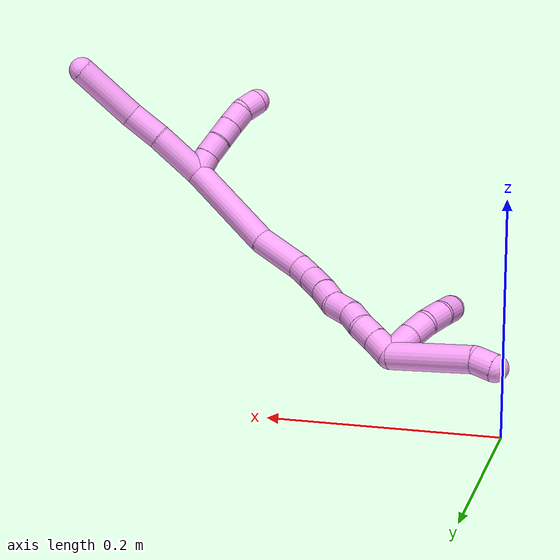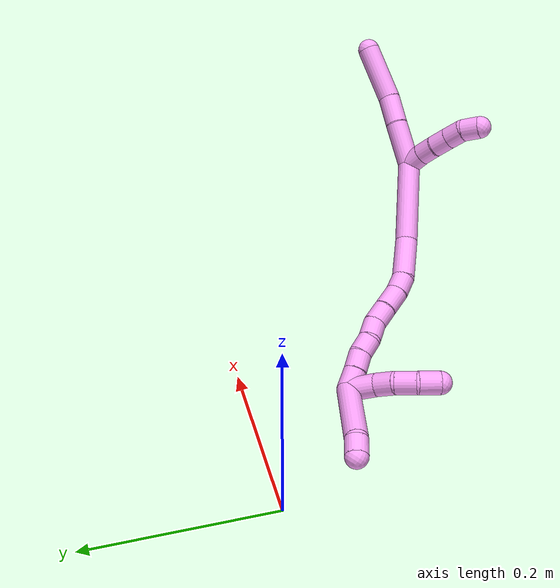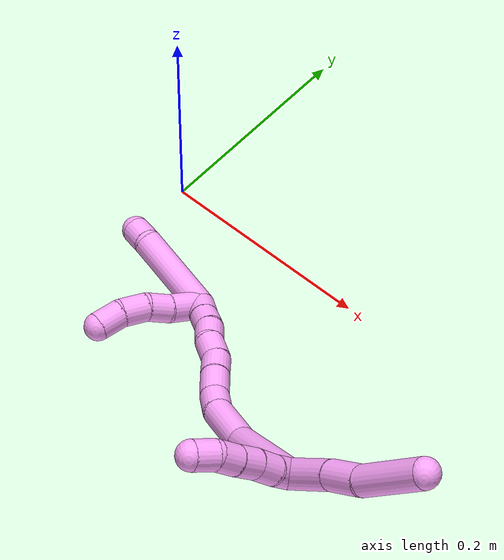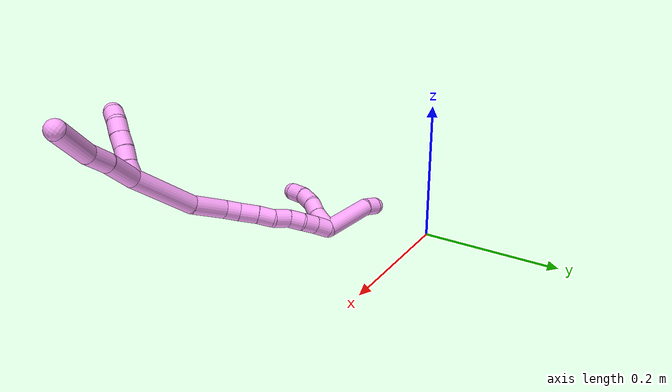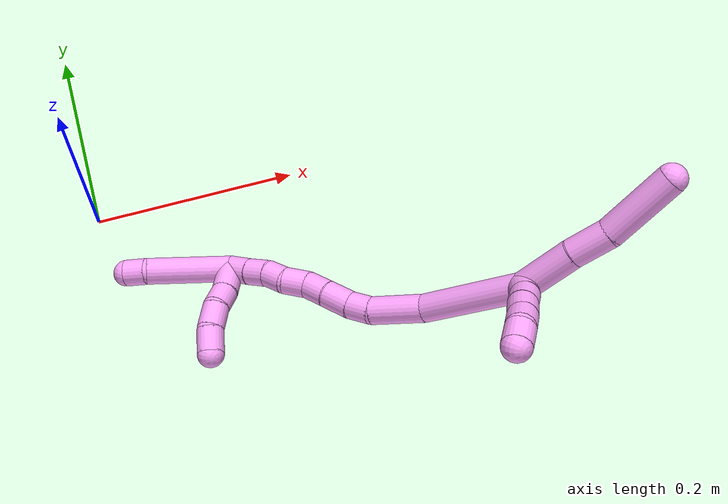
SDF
<sdf version="1.7">
 <world name="default">
  <model name="4">
   <static>0</static>
   <link name="4">
    <collision name="collision-cylinder-e_1_2_8">
     <pose>0.015173 0.011364 0.017309 -0.580959 0.63237 -0.194979</pose>
     <geometry><cylinder><radius>0.0125</radius><length>0.05134</length></cylinder></geometry>
     <surface>
      <friction><ode><mu>1.16</mu><mu2>1.16</mu2><slip1>0</slip1><slip2>0</slip2></ode></friction>
      <contact><ode><kp>1e+06</kp><kd>1</kd><max_vel>0</max_vel><min_depth>0.001</min_depth></ode></contact>
     </surface>
    </collision>
    <visual name="visual-cylinder-e_1_2_8">
     <pose>0.015173 0.011364 0.017309 -0.580959 0.63237 -0.194979</pose>
     <geometry><cylinder><radius>0.0125</radius><length>0.05134</length></cylinder></geometry>
     <material><ambient>1 0.65098 0.996078 1</ambient></material>
    </visual>
    <collision name="collision-cylinder-e_2_8_9">
     <pose>0.04113 0.028746 0.046496 -0.468918 0.680815 -0.168799</pose>
     <geometry><cylinder><radius>0.0125</radius><length>0.03427</length></cylinder></geometry>
     <surface>
      <friction><ode><mu>1.16</mu><mu2>1.16</mu2><slip1>0</slip1><slip2>0</slip2></ode></friction>
      <contact><ode><kp>1e+06</kp><kd>1</kd><max_vel>0</max_vel><min_depth>0.001</min_depth></ode></contact>
     </surface>
    </collision>
    <visual name="visual-cylinder-e_2_8_9">
     <pose>0.04113 0.028746 0.046496 -0.468918 0.680815 -0.168799</pose>
     <geometry><cylinder><radius>0.0125</radius><length>0.03427</length></cylinder></geometry>
     <material><ambient>1 0.65098 0.996078 1</ambient></material>
    </visual>
    <collision name="collision-cylinder-e_3_9_6">
     <pose>0.0714 0.051984 0.077355 -0.736817 0.650037 -0.258709</pose>
     <geometry><cylinder><radius>0.0125</radius><length>0.06439</length></cylinder></geometry>
     <surface>
      <friction><ode><mu>1.16</mu><mu2>1.16</mu2><slip1>0</slip1><slip2>0</slip2></ode></friction>
      <contact><ode><kp>1e+06</kp><kd>1</kd><max_vel>0</max_vel><min_depth>0.001</min_depth></ode></contact>
     </surface>
    </collision>
    <visual name="visual-cylinder-e_3_9_6">
     <pose>0.0714 0.051984 0.077355 -0.736817 0.650037 -0.258709</pose>
     <geometry><cylinder><radius>0.0125</radius><length>0.06439</length></cylinder></geometry>
     <material><ambient>1 0.65098 0.996078 1</ambient></material>
    </visual>
    <collision name="collision-cylinder-e_1_2_10">
     <pose>-0.006227 0.002222 0.007503 -0.287878 -0.672167 0.10118</pose>
     <geometry><cylinder><radius>0.0125</radius><length>0.02</length></cylinder></geometry>
     <surface>
      <friction><ode><mu>1.16</mu><mu2>1.16</mu2><slip1>0</slip1><slip2>0</slip2></ode></friction>
      <contact><ode><kp>1e+06</kp><kd>1</kd><max_vel>0</max_vel><min_depth>0.001</min_depth></ode></contact>
     </surface>
    </collision>
    <visual name="visual-cylinder-e_1_2_10">
     <pose>-0.006227 0.002222 0.007503 -0.287878 -0.672167 0.10118</pose>
     <geometry><cylinder><radius>0.0125</radius><length>0.02</length></cylinder></geometry>
     <material><ambient>1 0.65098 0.996078 1</ambient></material>
    </visual>
    <collision name="collision-cylinder-e_2_10_11">
     <pose>-0.01987 0.006973 0.021218 -0.386703 -0.835514 0.173388</pose>
     <geometry><cylinder><radius>0.0125</radius><length>0.02</length></cylinder></geometry>
     <surface>
      <friction><ode><mu>1.16</mu><mu2>1.16</mu2><slip1>0</slip1><slip2>0</slip2></ode></friction>
      <contact><ode><kp>1e+06</kp><kd>1</kd><max_vel>0</max_vel><min_depth>0.001</min_depth></ode></contact>
     </surface>
    </collision>
    <visual name="visual-cylinder-e_2_10_11">
     <pose>-0.01987 0.006973 0.021218 -0.386703 -0.835514 0.173388</pose>
     <geometry><cylinder><radius>0.0125</radius><length>0.02</length></cylinder></geometry>
     <material><ambient>1 0.65098 0.996078 1</ambient></material>
    </visual>
    <collision name="collision-cylinder-e_3_11_12">
     <pose>-0.034501 0.011031 0.034184 -0.222538 -0.805966 0.095193</pose>
     <geometry><cylinder><radius>0.0125</radius><length>0.02</length></cylinder></geometry>
     <surface>
      <friction><ode><mu>1.16</mu><mu2>1.16</mu2><slip1>0</slip1><slip2>0</slip2></ode></friction>
      <contact><ode><kp>1e+06</kp><kd>1</kd><max_vel>0</max_vel><min_depth>0.001</min_depth></ode></contact>
     </surface>
    </collision>
    <visual name="visual-cylinder-e_3_11_12">
     <pose>-0.034501 0.011031 0.034184 -0.222538 -0.805966 0.095193</pose>
     <geometry><cylinder><radius>0.0125</radius><length>0.02</length></cylinder></geometry>
     <material><ambient>1 0.65098 0.996078 1</ambient></material>
    </visual>
    <collision name="collision-cylinder-e_4_12_13">
     <pose>-0.049287 0.014502 0.047175 -0.301989 -0.858837 0.139122</pose>
     <geometry><cylinder><radius>0.0125</radius><length>0.02</length></cylinder></geometry>
     <surface>
      <friction><ode><mu>1.16</mu><mu2>1.16</mu2><slip1>0</slip1><slip2>0</slip2></ode></friction>
      <contact><ode><kp>1e+06</kp><kd>1</kd><max_vel>0</max_vel><min_depth>0.001</min_depth></ode></contact>
     </surface>
    </collision>
    <visual name="visual-cylinder-e_4_12_13">
     <pose>-0.049287 0.014502 0.047175 -0.301989 -0.858837 0.139122</pose>
     <geometry><cylinder><radius>0.0125</radius><length>0.02</length></cylinder></geometry>
     <material><ambient>1 0.65098 0.996078 1</ambient></material>
    </visual>
    <collision name="collision-cylinder-e_5_13_5">
     <pose>-0.065359 0.015297 0.058553 0.219844 -1.01608 -0.122748</pose>
     <geometry><cylinder><radius>0.0125</radius><length>0.02</length></cylinder></geometry>
     <surface>
      <friction><ode><mu>1.16</mu><mu2>1.16</mu2><slip1>0</slip1><slip2>0</slip2></ode></friction>
      <contact><ode><kp>1e+06</kp><kd>1</kd><max_vel>0</max_vel><min_depth>0.001</min_depth></ode></contact>
     </surface>
    </collision>
    <visual name="visual-cylinder-e_5_13_5">
     <pose>-0.065359 0.015297 0.058553 0.219844 -1.01608 -0.122748</pose>
     <geometry><cylinder><radius>0.0125</radius><length>0.02</length></cylinder></geometry>
     <material><ambient>1 0.65098 0.996078 1</ambient></material>
    </visual>
    <collision name="collision-cylinder-e_1_2_14">
     <pose>-0.021594 -0.008968 -0.041291 2.92773 -0.472444 -2.30268</pose>
     <geometry><cylinder><radius>0.0125</radius><length>0.094904</length></cylinder></geometry>
     <surface>
      <friction><ode><mu>1.16</mu><mu2>1.16</mu2><slip1>0</slip1><slip2>0</slip2></ode></friction>
      <contact><ode><kp>1e+06</kp><kd>1</kd><max_vel>0</max_vel><min_depth>0.001</min_depth></ode></contact>
     </surface>
    </collision>
    <visual name="visual-cylinder-e_1_2_14">
     <pose>-0.021594 -0.008968 -0.041291 2.92773 -0.472444 -2.30268</pose>
     <geometry><cylinder><radius>0.0125</radius><length>0.094904</length></cylinder></geometry>
     <material><ambient>1 0.65098 0.996078 1</ambient></material>
    </visual>
    <collision name="collision-cylinder-e_2_14_15">
     <pose>-0.056496 -0.016662 -0.103358 -3.08037 -0.568881 2.93289</pose>
     <geometry><cylinder><radius>0.0125</radius><length>0.049412</length></cylinder></geometry>
     <surface>
      <friction><ode><mu>1.16</mu><mu2>1.16</mu2><slip1>0</slip1><slip2>0</slip2></ode></friction>
      <contact><ode><kp>1e+06</kp><kd>1</kd><max_vel>0</max_vel><min_depth>0.001</min_depth></ode></contact>
     </surface>
    </collision>
    <visual name="visual-cylinder-e_2_14_15">
     <pose>-0.056496 -0.016662 -0.103358 -3.08037 -0.568881 2.93289</pose>
     <geometry><cylinder><radius>0.0125</radius><length>0.049412</length></cylinder></geometry>
     <material><ambient>1 0.65098 0.996078 1</ambient></material>
    </visual>
    <collision name="collision-cylinder-e_3_15_16">
     <pose>-0.073211 -0.013036 -0.133829 -2.90349 -0.329025 1.89287</pose>
     <geometry><cylinder><radius>0.0125</radius><length>0.021083</length></cylinder></geometry>
     <surface>
      <friction><ode><mu>1.16</mu><mu2>1.16</mu2><slip1>0</slip1><slip2>0</slip2></ode></friction>
      <contact><ode><kp>1e+06</kp><kd>1</kd><max_vel>0</max_vel><min_depth>0.001</min_depth></ode></contact>
     </surface>
    </collision>
    <visual name="visual-cylinder-e_3_15_16">
     <pose>-0.073211 -0.013036 -0.133829 -2.90349 -0.329025 1.89287</pose>
     <geometry><cylinder><radius>0.0125</radius><length>0.021083</length></cylinder></geometry>
     <material><ambient>1 0.65098 0.996078 1</ambient></material>
    </visual>
    <collision name="collision-cylinder-e_4_16_17">
     <pose>-0.079416 -0.006025 -0.155272 -2.76412 -0.217923 1.04023</pose>
     <geometry><cylinder><radius>0.0125</radius><length>0.025889</length></cylinder></geometry>
     <surface>
      <friction><ode><mu>1.16</mu><mu2>1.16</mu2><slip1>0</slip1><slip2>0</slip2></ode></friction>
      <contact><ode><kp>1e+06</kp><kd>1</kd><max_vel>0</max_vel><min_depth>0.001</min_depth></ode></contact>
     </surface>
    </collision>
    <visual name="visual-cylinder-e_4_16_17">
     <pose>-0.079416 -0.006025 -0.155272 -2.76412 -0.217923 1.04023</pose>
     <geometry><cylinder><radius>0.0125</radius><length>0.025889</length></cylinder></geometry>
     <material><ambient>1 0.65098 0.996078 1</ambient></material>
    </visual>
    <collision name="collision-cylinder-e_5_17_18">
     <pose>-0.084069 0.001902 -0.177571 -2.84122 -0.166344 1.00706</pose>
     <geometry><cylinder><radius>0.0125</radius><length>0.0224</length></cylinder></geometry>
     <surface>
      <friction><ode><mu>1.16</mu><mu2>1.16</mu2><slip1>0</slip1><slip2>0</slip2></ode></friction>
      <contact><ode><kp>1e+06</kp><kd>1</kd><max_vel>0</max_vel><min_depth>0.001</min_depth></ode></contact>
     </surface>
    </collision>
    <visual name="visual-cylinder-e_5_17_18">
     <pose>-0.084069 0.001902 -0.177571 -2.84122 -0.166344 1.00706</pose>
     <geometry><cylinder><radius>0.0125</radius><length>0.0224</length></cylinder></geometry>
     <material><ambient>1 0.65098 0.996078 1</ambient></material>
    </visual>
    <collision name="collision-cylinder-e_6_18_19">
     <pose>-0.091362 0.008513 -0.197656 -2.80427 -0.493833 1.95334</pose>
     <geometry><cylinder><radius>0.0125</radius><length>0.022949</length></cylinder></geometry>
     <surface>
      <friction><ode><mu>1.16</mu><mu2>1.16</mu2><slip1>0</slip1><slip2>0</slip2></ode></friction>
      <contact><ode><kp>1e+06</kp><kd>1</kd><max_vel>0</max_vel><min_depth>0.001</min_depth></ode></contact>
     </surface>
    </collision>
    <visual name="visual-cylinder-e_6_18_19">
     <pose>-0.091362 0.008513 -0.197656 -2.80427 -0.493833 1.95334</pose>
     <geometry><cylinder><radius>0.0125</radius><length>0.022949</length></cylinder></geometry>
     <material><ambient>1 0.65098 0.996078 1</ambient></material>
    </visual>
    <collision name="collision-cylinder-e_7_19_20">
     <pose>-0.098807 0.014491 -0.216779 -2.87352 -0.199042 1.27478</pose>
     <geometry><cylinder><radius>0.0125</radius><length>0.020288</length></cylinder></geometry>
     <surface>
      <friction><ode><mu>1.16</mu><mu2>1.16</mu2><slip1>0</slip1><slip2>0</slip2></ode></friction>
      <contact><ode><kp>1e+06</kp><kd>1</kd><max_vel>0</max_vel><min_depth>0.001</min_depth></ode></contact>
     </surface>
    </collision>
    <visual name="visual-cylinder-e_7_19_20">
     <pose>-0.098807 0.014491 -0.216779 -2.87352 -0.199042 1.27478</pose>
     <geometry><cylinder><radius>0.0125</radius><length>0.020288</length></cylinder></geometry>
     <material><ambient>1 0.65098 0.996078 1</ambient></material>
    </visual>
    <collision name="collision-cylinder-e_8_20_21">
     <pose>-0.104815 0.018162 -0.235812 -3.03226 -0.398658 2.61253</pose>
     <geometry><cylinder><radius>0.0125</radius><length>0.020619</length></cylinder></geometry>
     <surface>
      <friction><ode><mu>1.16</mu><mu2>1.16</mu2><slip1>0</slip1><slip2>0</slip2></ode></friction>
      <contact><ode><kp>1e+06</kp><kd>1</kd><max_vel>0</max_vel><min_depth>0.001</min_depth></ode></contact>
     </surface>
    </collision>
    <visual name="visual-cylinder-e_8_20_21">
     <pose>-0.104815 0.018162 -0.235812 -3.03226 -0.398658 2.61253</pose>
     <geometry><cylinder><radius>0.0125</radius><length>0.020619</length></cylinder></geometry>
     <material><ambient>1 0.65098 0.996078 1</ambient></material>
    </visual>
    <collision name="collision-cylinder-e_9_21_1">
     <pose>-0.112464 0.020382 -0.255809 -3.02986 -0.33085 2.49514</pose>
     <geometry><cylinder><radius>0.0125</radius><length>0.022457</length></cylinder></geometry>
     <surface>
      <friction><ode><mu>1.16</mu><mu2>1.16</mu2><slip1>0</slip1><slip2>0</slip2></ode></friction>
      <contact><ode><kp>1e+06</kp><kd>1</kd><max_vel>0</max_vel><min_depth>0.001</min_depth></ode></contact>
     </surface>
    </collision>
    <visual name="visual-cylinder-e_9_21_1">
     <pose>-0.112464 0.020382 -0.255809 -3.02986 -0.33085 2.49514</pose>
     <geometry><cylinder><radius>0.0125</radius><length>0.022457</length></cylinder></geometry>
     <material><ambient>1 0.65098 0.996078 1</ambient></material>
    </visual>
    <collision name="collision-cylinder-e_1_1_22">
     <pose>-0.128156 0.018706 -0.256591 0.284761 -0.869011 -0.132858</pose>
     <geometry><cylinder><radius>0.0125</radius><length>0.031542</length></cylinder></geometry>
     <surface>
      <friction><ode><mu>1.16</mu><mu2>1.16</mu2><slip1>0</slip1><slip2>0</slip2></ode></friction>
      <contact><ode><kp>1e+06</kp><kd>1</kd><max_vel>0</max_vel><min_depth>0.001</min_depth></ode></contact>
     </surface>
    </collision>
    <visual name="visual-cylinder-e_1_1_22">
     <pose>-0.128156 0.018706 -0.256591 0.284761 -0.869011 -0.132858</pose>
     <geometry><cylinder><radius>0.0125</radius><length>0.031542</length></cylinder></geometry>
     <material><ambient>1 0.65098 0.996078 1</ambient></material>
    </visual>
    <collision name="collision-cylinder-e_2_22_23">
     <pose>-0.14935 0.015268 -0.241276 0.103805 -1.0237 -0.058352</pose>
     <geometry><cylinder><radius>0.0125</radius><length>0.021428</length></cylinder></geometry>
     <surface>
      <friction><ode><mu>1.16</mu><mu2>1.16</mu2><slip1>0</slip1><slip2>0</slip2></ode></friction>
      <contact><ode><kp>1e+06</kp><kd>1</kd><max_vel>0</max_vel><min_depth>0.001</min_depth></ode></contact>
     </surface>
    </collision>
    <visual name="visual-cylinder-e_2_22_23">
     <pose>-0.14935 0.015268 -0.241276 0.103805 -1.0237 -0.058352</pose>
     <geometry><cylinder><radius>0.0125</radius><length>0.021428</length></cylinder></geometry>
     <material><ambient>1 0.65098 0.996078 1</ambient></material>
    </visual>
    <collision name="collision-cylinder-e_3_23_24">
     <pose>-0.16779 0.010481 -0.229682 0.607921 -0.900014 -0.300768</pose>
     <geometry><cylinder><radius>0.0125</radius><length>0.023718</length></cylinder></geometry>
     <surface>
      <friction><ode><mu>1.16</mu><mu2>1.16</mu2><slip1>0</slip1><slip2>0</slip2></ode></friction>
      <contact><ode><kp>1e+06</kp><kd>1</kd><max_vel>0</max_vel><min_depth>0.001</min_depth></ode></contact>
     </surface>
    </collision>
    <visual name="visual-cylinder-e_3_23_24">
     <pose>-0.16779 0.010481 -0.229682 0.607921 -0.900014 -0.300768</pose>
     <geometry><cylinder><radius>0.0125</radius><length>0.023718</length></cylinder></geometry>
     <material><ambient>1 0.65098 0.996078 1</ambient></material>
    </visual>
    <collision name="collision-cylinder-e_4_24_4">
     <pose>-0.184208 -0.000455 -0.217321 0.817285 -0.658075 -0.293581</pose>
     <geometry><cylinder><radius>0.0125</radius><length>0.023312</length></cylinder></geometry>
     <surface>
      <friction><ode><mu>1.16</mu><mu2>1.16</mu2><slip1>0</slip1><slip2>0</slip2></ode></friction>
      <contact><ode><kp>1e+06</kp><kd>1</kd><max_vel>0</max_vel><min_depth>0.001</min_depth></ode></contact>
     </surface>
    </collision>
    <visual name="visual-cylinder-e_4_24_4">
     <pose>-0.184208 -0.000455 -0.217321 0.817285 -0.658075 -0.293581</pose>
     <geometry><cylinder><radius>0.0125</radius><length>0.023312</length></cylinder></geometry>
     <material><ambient>1 0.65098 0.996078 1</ambient></material>
    </visual>
    <collision name="collision-cylinder-e_1_1_25">
     <pose>-0.147687 0.035429 -0.286358 -2.5354 -0.914262 2.00895</pose>
     <geometry><cylinder><radius>0.0125</radius><length>0.079725</length></cylinder></geometry>
     <surface>
      <friction><ode><mu>1.16</mu><mu2>1.16</mu2><slip1>0</slip1><slip2>0</slip2></ode></friction>
      <contact><ode><kp>1e+06</kp><kd>1</kd><max_vel>0</max_vel><min_depth>0.001</min_depth></ode></contact>
     </surface>
    </collision>
    <visual name="visual-cylinder-e_1_1_25">
     <pose>-0.147687 0.035429 -0.286358 -2.5354 -0.914262 2.00895</pose>
     <geometry><cylinder><radius>0.0125</radius><length>0.079725</length></cylinder></geometry>
     <material><ambient>1 0.65098 0.996078 1</ambient></material>
    </visual>
    <collision name="collision-cylinder-e_2_25_3">
     <pose>-0.186105 0.050743 -0.313692 -2.94631 -0.740917 2.64748</pose>
     <geometry><cylinder><radius>0.0125</radius><length>0.020275</length></cylinder></geometry>
     <surface>
      <friction><ode><mu>1.16</mu><mu2>1.16</mu2><slip1>0</slip1><slip2>0</slip2></ode></friction>
      <contact><ode><kp>1e+06</kp><kd>1</kd><max_vel>0</max_vel><min_depth>0.001</min_depth></ode></contact>
     </surface>
    </collision>
    <visual name="visual-cylinder-e_2_25_3">
     <pose>-0.186105 0.050743 -0.313692 -2.94631 -0.740917 2.64748</pose>
     <geometry><cylinder><radius>0.0125</radius><length>0.020275</length></cylinder></geometry>
     <material><ambient>1 0.65098 0.996078 1</ambient></material>
    </visual>
    <collision name="collision-sphere-3">
     <pose>-0.192948 0.052194 -0.32103 0 -0 0</pose>
     <geometry><sphere><radius>0.0125</radius></sphere></geometry>
     <surface>
      <friction><ode><mu>1.16</mu><mu2>1.16</mu2><slip1>0</slip1><slip2>0</slip2></ode></friction>
      <contact><ode><kp>1e+06</kp><kd>1</kd><max_vel>0</max_vel><min_depth>0.001</min_depth></ode></contact>
     </surface>
    </collision>
    <visual name="visual-sphere-3">
     <pose>-0.192948 0.052194 -0.32103 0 -0 0</pose>
     <geometry><sphere><radius>0.0125</radius></sphere></geometry>
     <material><ambient>1 0.65098 0.996078 1</ambient></material>
    </visual>
    <collision name="collision-sphere-25">
     <pose>-0.179263 0.049291 -0.306354 0 -0 0</pose>
     <geometry><sphere><radius>0.0125</radius></sphere></geometry>
     <surface>
      <friction><ode><mu>1.16</mu><mu2>1.16</mu2><slip1>0</slip1><slip2>0</slip2></ode></friction>
      <contact><ode><kp>1e+06</kp><kd>1</kd><max_vel>0</max_vel><min_depth>0.001</min_depth></ode></contact>
     </surface>
    </collision>
    <visual name="visual-sphere-25">
     <pose>-0.179263 0.049291 -0.306354 0 -0 0</pose>
     <geometry><sphere><radius>0.0125</radius></sphere></geometry>
     <material><ambient>1 0.65098 0.996078 1</ambient></material>
    </visual>
    <collision name="collision-sphere-4">
     <pose>-0.191337 -0.007181 -0.211012 0 -0 0</pose>
     <geometry><sphere><radius>0.0125</radius></sphere></geometry>
     <surface>
      <friction><ode><mu>1.16</mu><mu2>1.16</mu2><slip1>0</slip1><slip2>0</slip2></ode></friction>
      <contact><ode><kp>1e+06</kp><kd>1</kd><max_vel>0</max_vel><min_depth>0.001</min_depth></ode></contact>
     </surface>
    </collision>
    <visual name="visual-sphere-4">
     <pose>-0.191337 -0.007181 -0.211012 0 -0 0</pose>
     <geometry><sphere><radius>0.0125</radius></sphere></geometry>
     <material><ambient>1 0.65098 0.996078 1</ambient></material>
    </visual>
    <collision name="collision-sphere-24">
     <pose>-0.177079 0.00627 -0.223631 0 -0 0</pose>
     <geometry><sphere><radius>0.0125</radius></sphere></geometry>
     <surface>
      <friction><ode><mu>1.16</mu><mu2>1.16</mu2><slip1>0</slip1><slip2>0</slip2></ode></friction>
      <contact><ode><kp>1e+06</kp><kd>1</kd><max_vel>0</max_vel><min_depth>0.001</min_depth></ode></contact>
     </surface>
    </collision>
    <visual name="visual-sphere-24">
     <pose>-0.177079 0.00627 -0.223631 0 -0 0</pose>
     <geometry><sphere><radius>0.0125</radius></sphere></geometry>
     <material><ambient>1 0.65098 0.996078 1</ambient></material>
    </visual>
    <collision name="collision-sphere-23">
     <pose>-0.1585 0.014691 -0.235733 0 -0 0</pose>
     <geometry><sphere><radius>0.0125</radius></sphere></geometry>
     <surface>
      <friction><ode><mu>1.16</mu><mu2>1.16</mu2><slip1>0</slip1><slip2>0</slip2></ode></friction>
      <contact><ode><kp>1e+06</kp><kd>1</kd><max_vel>0</max_vel><min_depth>0.001</min_depth></ode></contact>
     </surface>
    </collision>
    <visual name="visual-sphere-23">
     <pose>-0.1585 0.014691 -0.235733 0 -0 0</pose>
     <geometry><sphere><radius>0.0125</radius></sphere></geometry>
     <material><ambient>1 0.65098 0.996078 1</ambient></material>
    </visual>
    <collision name="collision-sphere-22">
     <pose>-0.1402 0.015846 -0.24682 0 -0 0</pose>
     <geometry><sphere><radius>0.0125</radius></sphere></geometry>
     <surface>
      <friction><ode><mu>1.16</mu><mu2>1.16</mu2><slip1>0</slip1><slip2>0</slip2></ode></friction>
      <contact><ode><kp>1e+06</kp><kd>1</kd><max_vel>0</max_vel><min_depth>0.001</min_depth></ode></contact>
     </surface>
    </collision>
    <visual name="visual-sphere-22">
     <pose>-0.1402 0.015846 -0.24682 0 -0 0</pose>
     <geometry><sphere><radius>0.0125</radius></sphere></geometry>
     <material><ambient>1 0.65098 0.996078 1</ambient></material>
    </visual>
    <collision name="collision-sphere-1">
     <pose>-0.116112 0.021567 -0.266363 0 -0 0</pose>
     <geometry><sphere><radius>0.0125</radius></sphere></geometry>
     <surface>
      <friction><ode><mu>1.16</mu><mu2>1.16</mu2><slip1>0</slip1><slip2>0</slip2></ode></friction>
      <contact><ode><kp>1e+06</kp><kd>1</kd><max_vel>0</max_vel><min_depth>0.001</min_depth></ode></contact>
     </surface>
    </collision>
    <visual name="visual-sphere-1">
     <pose>-0.116112 0.021567 -0.266363 0 -0 0</pose>
     <geometry><sphere><radius>0.0125</radius></sphere></geometry>
     <material><ambient>1 0.65098 0.996078 1</ambient></material>
    </visual>
    <collision name="collision-sphere-21">
     <pose>-0.108817 0.019198 -0.245256 0 -0 0</pose>
     <geometry><sphere><radius>0.0125</radius></sphere></geometry>
     <surface>
      <friction><ode><mu>1.16</mu><mu2>1.16</mu2><slip1>0</slip1><slip2>0</slip2></ode></friction>
      <contact><ode><kp>1e+06</kp><kd>1</kd><max_vel>0</max_vel><min_depth>0.001</min_depth></ode></contact>
     </surface>
    </collision>
    <visual name="visual-sphere-21">
     <pose>-0.108817 0.019198 -0.245256 0 -0 0</pose>
     <geometry><sphere><radius>0.0125</radius></sphere></geometry>
     <material><ambient>1 0.65098 0.996078 1</ambient></material>
    </visual>
    <collision name="collision-sphere-11">
     <pose>-0.027286 0.009503 0.027431 0 -0 0</pose>
     <geometry><sphere><radius>0.0125</radius></sphere></geometry>
     <surface>
      <friction><ode><mu>1.16</mu><mu2>1.16</mu2><slip1>0</slip1><slip2>0</slip2></ode></friction>
      <contact><ode><kp>1e+06</kp><kd>1</kd><max_vel>0</max_vel><min_depth>0.001</min_depth></ode></contact>
     </surface>
    </collision>
    <visual name="visual-sphere-11">
     <pose>-0.027286 0.009503 0.027431 0 -0 0</pose>
     <geometry><sphere><radius>0.0125</radius></sphere></geometry>
     <material><ambient>1 0.65098 0.996078 1</ambient></material>
    </visual>
    <collision name="collision-sphere-10">
     <pose>-0.012454 0.004443 0.015005 0 -0 0</pose>
     <geometry><sphere><radius>0.0125</radius></sphere></geometry>
     <surface>
      <friction><ode><mu>1.16</mu><mu2>1.16</mu2><slip1>0</slip1><slip2>0</slip2></ode></friction>
      <contact><ode><kp>1e+06</kp><kd>1</kd><max_vel>0</max_vel><min_depth>0.001</min_depth></ode></contact>
     </surface>
    </collision>
    <visual name="visual-sphere-10">
     <pose>-0.012454 0.004443 0.015005 0 -0 0</pose>
     <geometry><sphere><radius>0.0125</radius></sphere></geometry>
     <material><ambient>1 0.65098 0.996078 1</ambient></material>
    </visual>
    <collision name="collision-sphere-6">
     <pose>0.090885 0.069205 0.096336 0 -0 0</pose>
     <geometry><sphere><radius>0.0125</radius></sphere></geometry>
     <surface>
      <friction><ode><mu>1.16</mu><mu2>1.16</mu2><slip1>0</slip1><slip2>0</slip2></ode></friction>
      <contact><ode><kp>1e+06</kp><kd>1</kd><max_vel>0</max_vel><min_depth>0.001</min_depth></ode></contact>
     </surface>
    </collision>
    <visual name="visual-sphere-6">
     <pose>0.090885 0.069205 0.096336 0 -0 0</pose>
     <geometry><sphere><radius>0.0125</radius></sphere></geometry>
     <material><ambient>1 0.65098 0.996078 1</ambient></material>
    </visual>
    <collision name="collision-sphere-9">
     <pose>0.051915 0.034763 0.058374 0 -0 0</pose>
     <geometry><sphere><radius>0.0125</radius></sphere></geometry>
     <surface>
      <friction><ode><mu>1.16</mu><mu2>1.16</mu2><slip1>0</slip1><slip2>0</slip2></ode></friction>
      <contact><ode><kp>1e+06</kp><kd>1</kd><max_vel>0</max_vel><min_depth>0.001</min_depth></ode></contact>
     </surface>
    </collision>
    <visual name="visual-sphere-9">
     <pose>0.051915 0.034763 0.058374 0 -0 0</pose>
     <geometry><sphere><radius>0.0125</radius></sphere></geometry>
     <material><ambient>1 0.65098 0.996078 1</ambient></material>
    </visual>
    <collision name="collision-sphere-2">
     <geometry><sphere><radius>0.0125</radius></sphere></geometry>
     <surface>
      <friction><ode><mu>1.16</mu><mu2>1.16</mu2><slip1>0</slip1><slip2>0</slip2></ode></friction>
      <contact><ode><kp>1e+06</kp><kd>1</kd><max_vel>0</max_vel><min_depth>0.001</min_depth></ode></contact>
     </surface>
    </collision>
    <visual name="visual-sphere-2">
     <geometry><sphere><radius>0.0125</radius></sphere></geometry>
     <material><ambient>1 0.65098 0.996078 1</ambient></material>
    </visual>
    <collision name="collision-sphere-19">
     <pose>-0.096801 0.011857 -0.20719 0 -0 0</pose>
     <geometry><sphere><radius>0.0125</radius></sphere></geometry>
     <surface>
      <friction><ode><mu>1.16</mu><mu2>1.16</mu2><slip1>0</slip1><slip2>0</slip2></ode></friction>
      <contact><ode><kp>1e+06</kp><kd>1</kd><max_vel>0</max_vel><min_depth>0.001</min_depth></ode></contact>
     </surface>
    </collision>
    <visual name="visual-sphere-19">
     <pose>-0.096801 0.011857 -0.20719 0 -0 0</pose>
     <geometry><sphere><radius>0.0125</radius></sphere></geometry>
     <material><ambient>1 0.65098 0.996078 1</ambient></material>
    </visual>
    <collision name="collision-sphere-8">
     <pose>0.030345 0.022728 0.034618 0 -0 0</pose>
     <geometry><sphere><radius>0.0125</radius></sphere></geometry>
     <surface>
      <friction><ode><mu>1.16</mu><mu2>1.16</mu2><slip1>0</slip1><slip2>0</slip2></ode></friction>
      <contact><ode><kp>1e+06</kp><kd>1</kd><max_vel>0</max_vel><min_depth>0.001</min_depth></ode></contact>
     </surface>
    </collision>
    <visual name="visual-sphere-8">
     <pose>0.030345 0.022728 0.034618 0 -0 0</pose>
     <geometry><sphere><radius>0.0125</radius></sphere></geometry>
     <material><ambient>1 0.65098 0.996078 1</ambient></material>
    </visual>
    <collision name="collision-sphere-12">
     <pose>-0.041716 0.012559 0.040938 0 -0 0</pose>
     <geometry><sphere><radius>0.0125</radius></sphere></geometry>
     <surface>
      <friction><ode><mu>1.16</mu><mu2>1.16</mu2><slip1>0</slip1><slip2>0</slip2></ode></friction>
      <contact><ode><kp>1e+06</kp><kd>1</kd><max_vel>0</max_vel><min_depth>0.001</min_depth></ode></contact>
     </surface>
    </collision>
    <visual name="visual-sphere-12">
     <pose>-0.041716 0.012559 0.040938 0 -0 0</pose>
     <geometry><sphere><radius>0.0125</radius></sphere></geometry>
     <material><ambient>1 0.65098 0.996078 1</ambient></material>
    </visual>
    <collision name="collision-sphere-13">
     <pose>-0.056858 0.016445 0.053413 0 -0 0</pose>
     <geometry><sphere><radius>0.0125</radius></sphere></geometry>
     <surface>
      <friction><ode><mu>1.16</mu><mu2>1.16</mu2><slip1>0</slip1><slip2>0</slip2></ode></friction>
      <contact><ode><kp>1e+06</kp><kd>1</kd><max_vel>0</max_vel><min_depth>0.001</min_depth></ode></contact>
     </surface>
    </collision>
    <visual name="visual-sphere-13">
     <pose>-0.056858 0.016445 0.053413 0 -0 0</pose>
     <geometry><sphere><radius>0.0125</radius></sphere></geometry>
     <material><ambient>1 0.65098 0.996078 1</ambient></material>
    </visual>
    <collision name="collision-sphere-5">
     <pose>-0.073859 0.014148 0.063693 0 -0 0</pose>
     <geometry><sphere><radius>0.0125</radius></sphere></geometry>
     <surface>
      <friction><ode><mu>1.16</mu><mu2>1.16</mu2><slip1>0</slip1><slip2>0</slip2></ode></friction>
      <contact><ode><kp>1e+06</kp><kd>1</kd><max_vel>0</max_vel><min_depth>0.001</min_depth></ode></contact>
     </surface>
    </collision>
    <visual name="visual-sphere-5">
     <pose>-0.073859 0.014148 0.063693 0 -0 0</pose>
     <geometry><sphere><radius>0.0125</radius></sphere></geometry>
     <material><ambient>1 0.65098 0.996078 1</ambient></material>
    </visual>
    <collision name="collision-sphere-14">
     <pose>-0.043187 -0.017936 -0.082583 0 -0 0</pose>
     <geometry><sphere><radius>0.0125</radius></sphere></geometry>
     <surface>
      <friction><ode><mu>1.16</mu><mu2>1.16</mu2><slip1>0</slip1><slip2>0</slip2></ode></friction>
      <contact><ode><kp>1e+06</kp><kd>1</kd><max_vel>0</max_vel><min_depth>0.001</min_depth></ode></contact>
     </surface>
    </collision>
    <visual name="visual-sphere-14">
     <pose>-0.043187 -0.017936 -0.082583 0 -0 0</pose>
     <geometry><sphere><radius>0.0125</radius></sphere></geometry>
     <material><ambient>1 0.65098 0.996078 1</ambient></material>
    </visual>
    <collision name="collision-sphere-15">
     <pose>-0.069805 -0.015389 -0.124134 0 -0 0</pose>
     <geometry><sphere><radius>0.0125</radius></sphere></geometry>
     <surface>
      <friction><ode><mu>1.16</mu><mu2>1.16</mu2><slip1>0</slip1><slip2>0</slip2></ode></friction>
      <contact><ode><kp>1e+06</kp><kd>1</kd><max_vel>0</max_vel><min_depth>0.001</min_depth></ode></contact>
     </surface>
    </collision>
    <visual name="visual-sphere-15">
     <pose>-0.069805 -0.015389 -0.124134 0 -0 0</pose>
     <geometry><sphere><radius>0.0125</radius></sphere></geometry>
     <material><ambient>1 0.65098 0.996078 1</ambient></material>
    </visual>
    <collision name="collision-sphere-16">
     <pose>-0.076617 -0.010683 -0.143523 0 -0 0</pose>
     <geometry><sphere><radius>0.0125</radius></sphere></geometry>
     <surface>
      <friction><ode><mu>1.16</mu><mu2>1.16</mu2><slip1>0</slip1><slip2>0</slip2></ode></friction>
      <contact><ode><kp>1e+06</kp><kd>1</kd><max_vel>0</max_vel><min_depth>0.001</min_depth></ode></contact>
     </surface>
    </collision>
    <visual name="visual-sphere-16">
     <pose>-0.076617 -0.010683 -0.143523 0 -0 0</pose>
     <geometry><sphere><radius>0.0125</radius></sphere></geometry>
     <material><ambient>1 0.65098 0.996078 1</ambient></material>
    </visual>
    <collision name="collision-sphere-17">
     <pose>-0.082214 -0.001367 -0.16702 0 -0 0</pose>
     <geometry><sphere><radius>0.0125</radius></sphere></geometry>
     <surface>
      <friction><ode><mu>1.16</mu><mu2>1.16</mu2><slip1>0</slip1><slip2>0</slip2></ode></friction>
      <contact><ode><kp>1e+06</kp><kd>1</kd><max_vel>0</max_vel><min_depth>0.001</min_depth></ode></contact>
     </surface>
    </collision>
    <visual name="visual-sphere-17">
     <pose>-0.082214 -0.001367 -0.16702 0 -0 0</pose>
     <geometry><sphere><radius>0.0125</radius></sphere></geometry>
     <material><ambient>1 0.65098 0.996078 1</ambient></material>
    </visual>
    <collision name="collision-sphere-18">
     <pose>-0.085923 0.00517 -0.188122 0 -0 0</pose>
     <geometry><sphere><radius>0.0125</radius></sphere></geometry>
     <surface>
      <friction><ode><mu>1.16</mu><mu2>1.16</mu2><slip1>0</slip1><slip2>0</slip2></ode></friction>
      <contact><ode><kp>1e+06</kp><kd>1</kd><max_vel>0</max_vel><min_depth>0.001</min_depth></ode></contact>
     </surface>
    </collision>
    <visual name="visual-sphere-18">
     <pose>-0.085923 0.00517 -0.188122 0 -0 0</pose>
     <geometry><sphere><radius>0.0125</radius></sphere></geometry>
     <material><ambient>1 0.65098 0.996078 1</ambient></material>
    </visual>
    <collision name="collision-sphere-20">
     <pose>-0.100813 0.017125 -0.226368 0 -0 0</pose>
     <geometry><sphere><radius>0.0125</radius></sphere></geometry>
     <surface>
      <friction><ode><mu>1.16</mu><mu2>1.16</mu2><slip1>0</slip1><slip2>0</slip2></ode></friction>
      <contact><ode><kp>1e+06</kp><kd>1</kd><max_vel>0</max_vel><min_depth>0.001</min_depth></ode></contact>
     </surface>
    </collision>
    <visual name="visual-sphere-20">
     <pose>-0.100813 0.017125 -0.226368 0 -0 0</pose>
     <geometry><sphere><radius>0.0125</radius></sphere></geometry>
     <material><ambient>1 0.65098 0.996078 1</ambient></material>
    </visual>
    <inertial>
     <pose>-0.062526 0.013578 -0.10869 0 -0 0</pose>
     <mass>0.75</mass>
     <inertia>
      <ixx>-6.5e-05</ixx>
      <ixy>0</ixy>
      <ixz>0</ixz>
      <iyy>0.000144</iyy>
      <iyz>0</iyz>
      <izz>3.5e-05</izz>
     </inertia>
    </inertial>
   </link>
   <pose>0.3364 -0.240706 0.161356 0.901471 0.157867 0.453331</pose>
  </model>
 </world>
</sdf>
